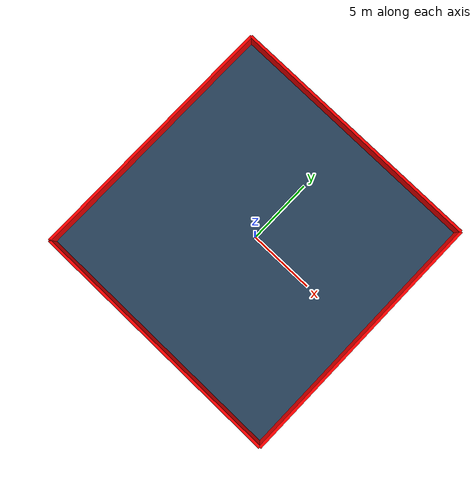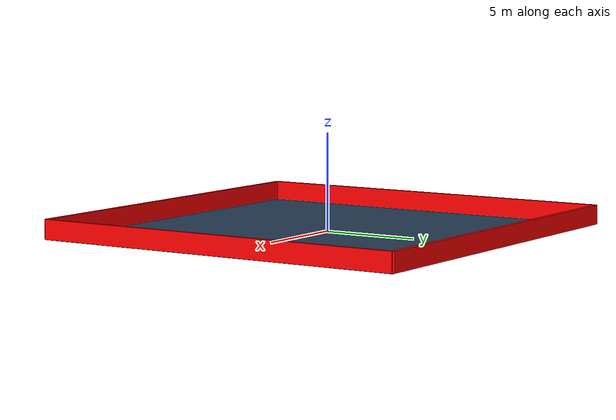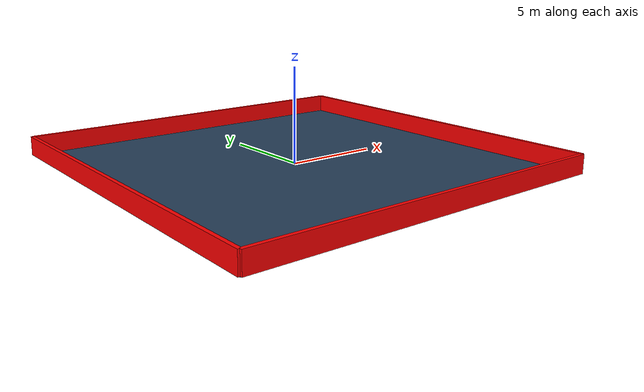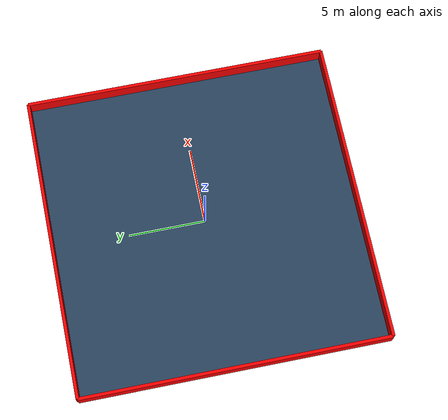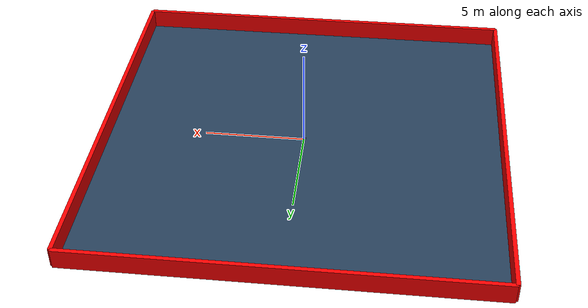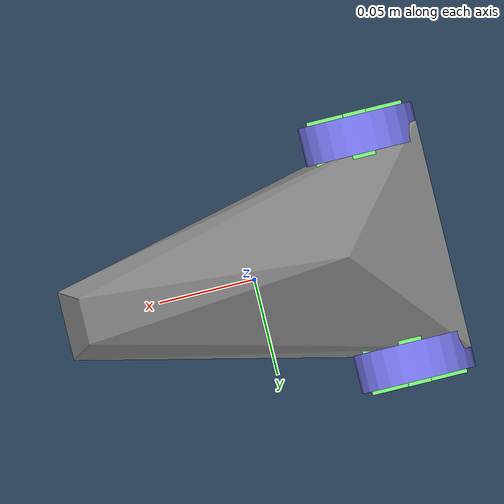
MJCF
<mujoco>
  <compiler autolimits="true"/>

  <asset>
    <texture name="grid" type="2d" builtin="checker" width="512" height="512" rgb1=".1 .2 .3" rgb2=".2 .3 .4"/>
    <material name="grid" texture="grid" texrepeat="5 5" texuniform="true" reflectance=".2"/>
    <mesh name="chasis" scale=".01 .006 .0015"
      vertex=" 9   2   0
              -10  10  10
               9  -2   0
               10  3  -10
               10 -3  -10
              -8   10 -10
              -10 -10  10
              -8  -10 -10
              -5   0   20"/>
  </asset>

  <default>
    <joint damping=".03" actuatorfrcrange="-0.5 0.5"/>
    <default class="wheel">
      <geom type="cylinder" size=".03 .01" rgba=".5 .5 1 1"/>
    </default>
    <default class="decor">
      <site type="box" rgba=".5 1 .5 1"/>
    </default>
  </default>

  <worldbody>
    <geom type="plane" size="10 10 .01" material="grid"/>
    <geom name="wall_north" type="box" pos="0 10 0.5" size="10 0.1 0.5" rgba="1 0 0 1"/>
    <geom name="wall_south" type="box" pos="0 -10 0.5" size="10 0.1 0.5" rgba="1 0 0 1"/>
    <geom name="wall_east"  type="box" pos="10 0 0.5" size="0.1 10 0.5" rgba="1 0 0 1"/>
    <geom name="wall_west"  type="box" pos="-10 0 0.5" size="0.1 10 0.5" rgba="1 0 0 1"/>

    <geom type="plane" size="10 10 .01" material="grid"/>

    <body name="car" pos="0 0 .03">
      <freejoint/>
      <light name="top light" pos="0 0 5" mode="trackcom" diffuse="0.6 0.6 0.6" directional="false"/>
      <light name="side_light_1" pos="5 0 2" dir="-1 0 -0.5" diffuse="0.5 0.5 0.5"/>
      <light name="side_light_2" pos="-5 0 2" dir="1 0 -0.5" diffuse="0.5 0.5 0.5"/>
      <light name="side_light_3" pos="0 5 2" dir="0 -1 -0.5" diffuse="0.5 0.5 0.5"/>
      <light name="side_light_4" pos="0 -5 2" dir="0 1 -0.5" diffuse="0.5 0.5 0.5"/>

      <geom name="chasis" type="mesh" mesh="chasis"/>
      <geom name="front wheel" pos=".08 0 -.015" type="sphere" size=".015" condim="1" priority="1"/>

      <light name="front light" pos=".1 0 .02" dir="2 0 -1" diffuse="1 1 1"/>

      <body name="left wheel" pos="-.07 .06 0" zaxis="0 1 0">
        <joint name="left"/>
        <geom class="wheel"/>
        <site class="decor" size=".006 .025 .012"/>
        <site class="decor" size=".025 .006 .012"/>
      </body>

      <body name="right wheel" pos="-.07 -.06 0" zaxis="0 1 0">
        <joint name="right"/>
        <geom class="wheel"/>
        <site class="decor" size=".006 .025 .012"/>
        <site class="decor" size=".025 .006 .012"/>
      </body>

    </body>
  </worldbody>

  <tendon>
    <fixed name="forward">
      <joint joint="left" coef=".5"/>
      <joint joint="right" coef=".5"/>
    </fixed>
    <fixed name="turn">
      <joint joint="left" coef="-.5"/>
      <joint joint="right" coef=".5"/>
    </fixed>
  </tendon>

  <actuator>
    <motor name="forward" tendon="forward" ctrlrange="-1 1"/>
    <motor name="turn" tendon="turn" ctrlrange="-1 1"/>
  </actuator>

  <sensor>
    <jointactuatorfrc name="right" joint="right"/>
    <jointactuatorfrc name="left" joint="left"/>
  </sensor>
</mujoco>
